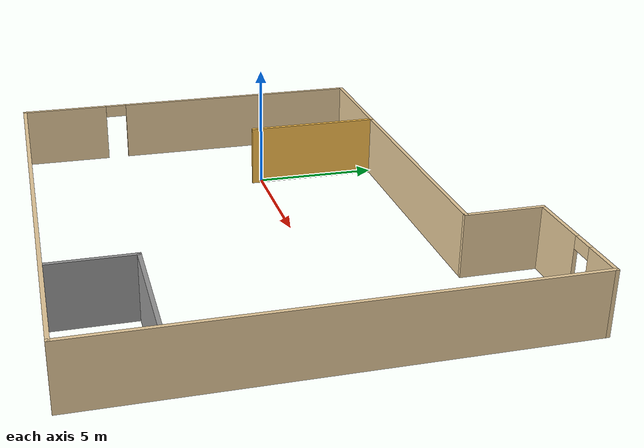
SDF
<?xml version='1.0'?>
<sdf version='1.7'>
  <model name='restaurant'>
    <pose>5.51681 -0.935612 0 0 -0 0</pose>
    <link name='Wall_15'>
      <collision name='Wall_15_Collision'>
        <geometry>
          <box>
            <size>20 0.15 2.5</size>
          </box>
        </geometry>
        <pose>0 0 1.25 0 -0 0</pose>
      </collision>
      <visual name='Wall_15_Visual'>
        <pose>0 0 1.25 0 -0 0</pose>
        <geometry>
          <box>
            <size>20 0.15 2.5</size>
          </box>
        </geometry>
        <material>
          <script>
            <uri>file://media/materials/scripts/gazebo.material</uri>
            <name>Gazebo/Grey</name>
          </script>
          <ambient>0.921569 0.807843 0.615686 1</ambient>
        </material>
        <meta>
          <layer>0</layer>
        </meta>
      </visual>
      <pose>-0 -8.925 0 0 -0 0</pose>
    </link>
    <link name='Wall_25'>
      <collision name='Wall_25_Collision'>
        <geometry>
          <box>
            <size>15 0.15 2.5</size>
          </box>
        </geometry>
        <pose>0 0 1.25 0 -0 0</pose>
      </collision>
      <visual name='Wall_25_Visual'>
        <pose>0 0 1.25 0 -0 0</pose>
        <geometry>
          <box>
            <size>15 0.15 2.5</size>
          </box>
        </geometry>
        <material>
          <script>
            <uri>file://media/materials/scripts/gazebo.material</uri>
            <name>Gazebo/Grey</name>
          </script>
          <ambient>0.921569 0.807843 0.615686 1</ambient>
        </material>
        <meta>
          <layer>0</layer>
        </meta>
      </visual>
      <pose>-2.4999 5.92481 0 0 -0 -2.6e-05</pose>
    </link>
    <link name='Wall_28'>
      <collision name='Wall_28_Collision'>
        <geometry>
          <box>
            <size>3.15 0.15 2.5</size>
          </box>
        </geometry>
        <pose>0 0 1.25 0 -0 0</pose>
      </collision>
      <visual name='Wall_28_Visual'>
        <pose>0 0 1.25 0 -0 0</pose>
        <geometry>
          <box>
            <size>3.15 0.15 2.5</size>
          </box>
        </geometry>
        <material>
          <script>
            <uri>file://media/materials/scripts/gazebo.material</uri>
            <name>Gazebo/Grey</name>
          </script>
          <ambient>0.921569 0.807843 0.615686 1</ambient>
        </material>
        <meta>
          <layer>0</layer>
        </meta>
      </visual>
      <pose>4.92519 7.42461 0 0 -0 1.5708</pose>
    </link>
    <link name='Wall_39'>
      <collision name='Wall_39_Collision'>
        <geometry>
          <box>
            <size>18 0.15 2.5</size>
          </box>
        </geometry>
        <pose>0 0 1.25 0 -0 0</pose>
      </collision>
      <visual name='Wall_39_Visual'>
        <pose>0 0 1.25 0 -0 0</pose>
        <geometry>
          <box>
            <size>18 0.15 2.5</size>
          </box>
        </geometry>
        <material>
          <script>
            <uri>file://media/materials/scripts/gazebo.material</uri>
            <name>Gazebo/Grey</name>
          </script>
          <ambient>0.921569 0.807843 0.615686 1</ambient>
        </material>
        <meta>
          <layer>0</layer>
        </meta>
      </visual>
      <pose>9.925 0 0 0 -0 1.5708</pose>
    </link>
    <link name='Wall_40'>
      <pose>7.5 8.925 0 0 -0 3.14159</pose>
      <visual name='Wall_40_Visual_0'>
        <pose>-1.65738 0 1.25 0 -0 0</pose>
        <geometry>
          <box>
            <size>1.68524 0.15 2.5</size>
          </box>
        </geometry>
        <material>
          <script>
            <uri>file://media/materials/scripts/gazebo.material</uri>
            <name>Gazebo/Grey</name>
          </script>
          <ambient>0.921569 0.807843 0.615686 1</ambient>
        </material>
        <meta>
          <layer>0</layer>
        </meta>
      </visual>
      <collision name='Wall_40_Collision_0'>
        <geometry>
          <box>
            <size>1.68524 0.15 2.5</size>
          </box>
        </geometry>
        <pose>-1.65738 0 1.25 0 -0 0</pose>
      </collision>
      <visual name='Wall_40_Visual_1'>
        <pose>1.29262 0 1.25 0 -0 0</pose>
        <geometry>
          <box>
            <size>2.41476 0.15 2.5</size>
          </box>
        </geometry>
        <material>
          <script>
            <uri>file://media/materials/scripts/gazebo.material</uri>
            <name>Gazebo/Grey</name>
          </script>
          <ambient>0.921569 0.807843 0.615686 1</ambient>
        </material>
        <meta>
          <layer>0</layer>
        </meta>
      </visual>
      <collision name='Wall_40_Collision_1'>
        <geometry>
          <box>
            <size>2.41476 0.15 2.5</size>
          </box>
        </geometry>
        <pose>1.29262 0 1.25 0 -0 0</pose>
      </collision>
      <visual name='Wall_40_Visual_2'>
        <pose>-0.364758 0 2.25 0 -0 0</pose>
        <geometry>
          <box>
            <size>0.9 0.15 0.5</size>
          </box>
        </geometry>
        <material>
          <script>
            <uri>file://media/materials/scripts/gazebo.material</uri>
            <name>Gazebo/Grey</name>
          </script>
          <ambient>0.921569 0.807843 0.615686 1</ambient>
        </material>
        <meta>
          <layer>0</layer>
        </meta>
      </visual>
      <collision name='Wall_40_Collision_2'>
        <geometry>
          <box>
            <size>0.9 0.15 0.5</size>
          </box>
        </geometry>
        <pose>-0.364758 0 2.25 0 -0 0</pose>
      </collision>
    </link>
    <link name='Wall_42'>
      <collision name='Wall_42_Collision'>
        <geometry>
          <box>
            <size>5.5 0.15 2.5</size>
          </box>
        </geometry>
        <pose>0 0 1.25 0 -0 0</pose>
      </collision>
      <visual name='Wall_42_Visual'>
        <pose>0 0 1.25 0 -0 0</pose>
        <geometry>
          <box>
            <size>5.5 0.15 2.5</size>
          </box>
        </geometry>
        <material>
          <script>
            <uri>file://media/materials/scripts/gazebo.material</uri>
            <name>Gazebo/Grey</name>
          </script>
          <ambient>1 0.764706 0.305882 1</ambient>
        </material>
        <meta>
          <layer>0</layer>
        </meta>
      </visual>
      <pose>-5.39764 3.25291 0 0 -0 -1.5708</pose>
    </link>
    <link name='Wall_44'>
      <collision name='Wall_44_Collision'>
        <geometry>
          <box>
            <size>4.75 0.15 2.5</size>
          </box>
        </geometry>
        <pose>0 0 1.25 0 -0 0</pose>
      </collision>
      <visual name='Wall_44_Visual'>
        <pose>0 0 1.25 0 -0 0</pose>
        <geometry>
          <box>
            <size>4.75 0.15 2.5</size>
          </box>
        </geometry>
        <material>
          <script>
            <uri>file://media/materials/scripts/gazebo.material</uri>
            <name>Gazebo/Grey</name>
          </script>
          <ambient>1 1 1 1</ambient>
        </material>
        <meta>
          <layer>0</layer>
        </meta>
      </visual>
      <pose>7.49696 -5.72166 0 0 -0 3.14159</pose>
    </link>
    <link name='Wall_45'>
      <collision name='Wall_45_Collision'>
        <geometry>
          <box>
            <size>3.25 0.15 2.5</size>
          </box>
        </geometry>
        <pose>0 0 1.25 0 -0 0</pose>
      </collision>
      <visual name='Wall_45_Visual'>
        <pose>0 0 1.25 0 -0 0</pose>
        <geometry>
          <box>
            <size>3.25 0.15 2.5</size>
          </box>
        </geometry>
        <material>
          <script>
            <uri>file://media/materials/scripts/gazebo.material</uri>
            <name>Gazebo/Grey</name>
          </script>
          <ambient>1 1 1 1</ambient>
        </material>
        <meta>
          <layer>0</layer>
        </meta>
      </visual>
      <pose>5.19696 -7.27166 0 0 -0 -1.5708</pose>
    </link>
    <link name='Wall_8'>
      <pose>-9.925 -1.5 0 0 -0 -1.5708</pose>
      <visual name='Wall_8_Visual_0'>
        <pose>-2.29307 0 1.25 0 -0 0</pose>
        <geometry>
          <box>
            <size>10.4139 0.15 2.5</size>
          </box>
        </geometry>
        <material>
          <script>
            <uri>file://media/materials/scripts/gazebo.material</uri>
            <name>Gazebo/Grey</name>
          </script>
          <ambient>0.921569 0.807843 0.615686 1</ambient>
        </material>
        <meta>
          <layer>0</layer>
        </meta>
      </visual>
      <collision name='Wall_8_Collision_0'>
        <geometry>
          <box>
            <size>10.4139 0.15 2.5</size>
          </box>
        </geometry>
        <pose>-2.29307 0 1.25 0 -0 0</pose>
      </collision>
      <visual name='Wall_8_Visual_1'>
        <pose>5.65693 0 1.25 0 -0 0</pose>
        <geometry>
          <box>
            <size>3.68614 0.15 2.5</size>
          </box>
        </geometry>
        <material>
          <script>
            <uri>file://media/materials/scripts/gazebo.material</uri>
            <name>Gazebo/Grey</name>
          </script>
          <ambient>0.921569 0.807843 0.615686 1</ambient>
        </material>
        <meta>
          <layer>0</layer>
        </meta>
      </visual>
      <collision name='Wall_8_Collision_1'>
        <geometry>
          <box>
            <size>3.68614 0.15 2.5</size>
          </box>
        </geometry>
        <pose>5.65693 0 1.25 0 -0 0</pose>
      </collision>
      <visual name='Wall_8_Visual_2'>
        <pose>3.36386 0 2.25 0 -0 0</pose>
        <geometry>
          <box>
            <size>0.9 0.15 0.5</size>
          </box>
        </geometry>
        <material>
          <script>
            <uri>file://media/materials/scripts/gazebo.material</uri>
            <name>Gazebo/Grey</name>
          </script>
          <ambient>0.921569 0.807843 0.615686 1</ambient>
        </material>
        <meta>
          <layer>0</layer>
        </meta>
      </visual>
      <collision name='Wall_8_Collision_2'>
        <geometry>
          <box>
            <size>0.9 0.15 0.5</size>
          </box>
        </geometry>
        <pose>3.36386 0 2.25 0 -0 0</pose>
      </collision>
    </link>
    <static>1</static>
  </model>
</sdf>
